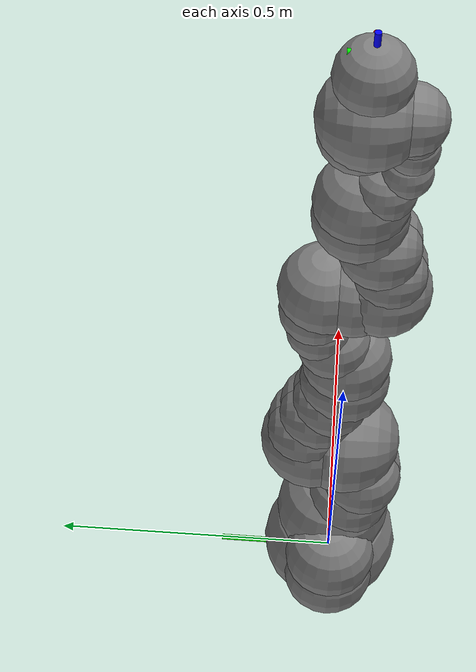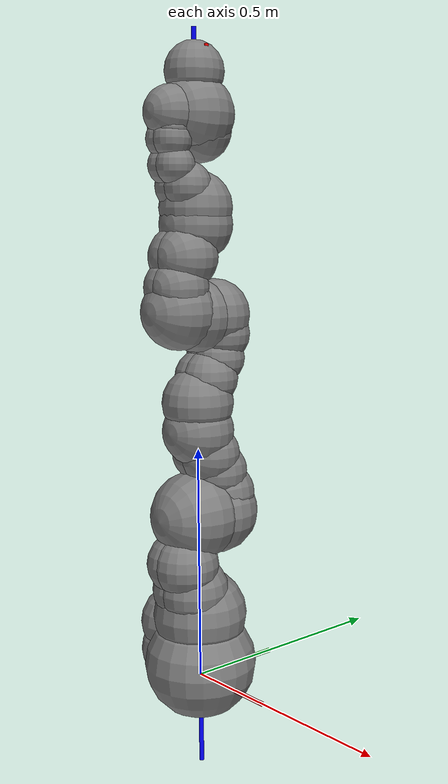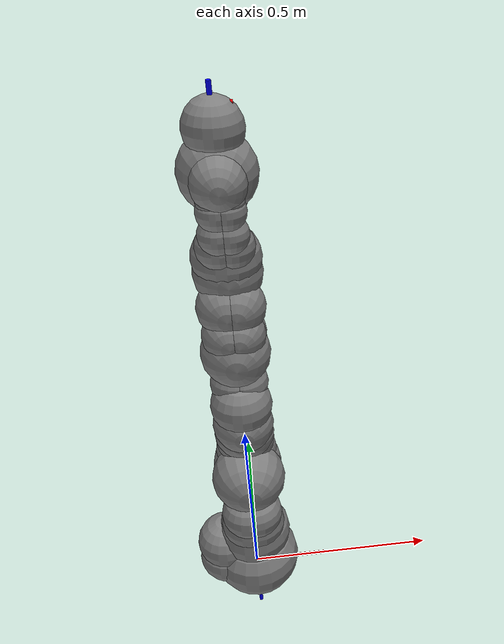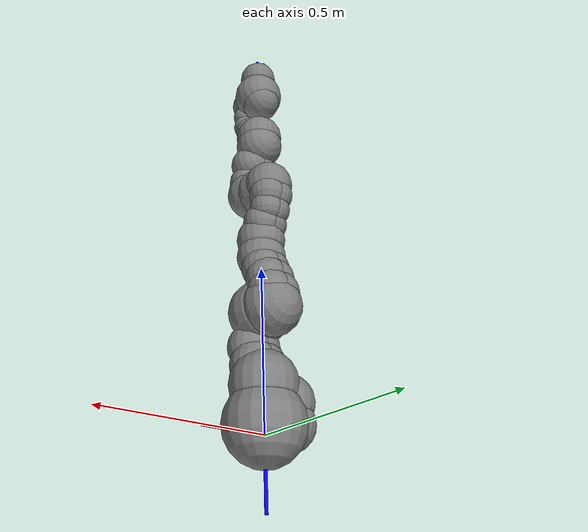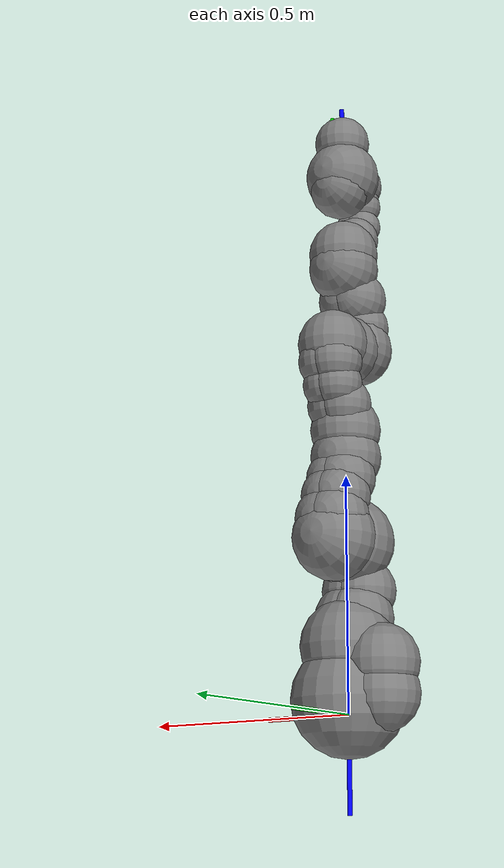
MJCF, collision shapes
<mujoco model="iiwa14">
    <!-- add -->
  <option timestep="0.001"  tolerance="1e-10" solver="Newton" jacobian="dense" cone="pyramidal" gravity="0 0 -9.81">  <!--integrator="RK4"  iteration="50"-->
      <flag contact="enable" energy="enable"/>
  </option>
  <size njmax="500" nconmax="1000" />

  <compiler angle="radian" meshdir="assets" autolimits="true"/>

  <option integrator="implicitfast"/>

  <default>
    <default class="iiwa">
      <material specular="0.5" shininess="0.25"/>
      <joint axis="0 0 1"/>
      <default class="joint1_motor">
        <joint damping="0.5" />
      </default>
      <default class="joint2_motor">
        <joint damping="0.5" />
      </default>
      <default class="joint3_motor">
        <joint damping="0.5" />
      </default>
      <default class="visual">
        <geom type="mesh" contype="0" conaffinity="0" group="2" material="gray"/>
      </default>
      <default class="collision">
        <geom group="3"/>
      </default>
      <site size="0.001" rgba="1 0 0 1" group="4"/>
    </default>
  </default>

  <asset>
    <material class="iiwa" name="gray" rgba="0.4 0.4 0.4 1"/>
    <material class="iiwa" name="light_gray" rgba="0.6 0.6 0.6 1"/>
    <material class="iiwa" name="black" rgba="0 0 0 1"/>
    <material class="iiwa" name="orange" rgba="1 0.423529 0.0392157 1"/>

    <mesh file="link_0.obj"/>
    <mesh file="link_1.obj"/>
    <mesh file="link_2_orange.obj"/>
    <mesh file="link_2_grey.obj"/>
    <mesh file="link_3.obj"/>
    <mesh file="band.obj"/>
    <mesh file="kuka.obj"/>
    <mesh file="link_4_orange.obj"/>
    <mesh file="link_4_grey.obj"/>
    <mesh file="link_5.obj"/>
    <mesh file="link_6_orange.obj"/>
    <mesh file="link_6_grey.obj"/>
    <mesh file="link_7.obj"/>
  </asset>

  <worldbody>
    <body name="base" childclass="iiwa">
      <!-- color -->
      <geom type="cylinder" size="0.005 0.1" rgba="1 0 0 1" pos="0.1 0 0" euler="0 -1.57  0" />
      <geom type="cylinder" size="0.005 0.1" rgba="0 1 0 1" pos="0 0.1 0" euler="-1.57 0 0" />
      <geom type="cylinder" size="0.005 0.2" rgba="0 0 1 1" pos="0 0 0" euler="0 0 0" />
      <inertial mass="5" pos="-0.1 0 0.07" diaginertia="0.05 0.06 0.03"/>
      <geom class="visual" mesh="link_0"/>
      <geom class="collision" size="0.12" pos="0 0 0.03"/>
      <geom class="collision" size="0.08" pos="-0.08 0 0.103"/>
      <geom class="collision" size="0.08" pos="-0.08 0 0.04"/>
      <geom class="collision" size="0.1" pos="0 0 0.14"/>
      <body name="link1" pos="0 0 0.1575">
        <inertial mass="5.76" pos="0 -0.03 0.12" diaginertia="0.0333 0.033 0.0123"/>
        <joint name="joint1" range="-2.96706 2.96706"
          actuatorfrcrange="-176 176" class="joint1_motor"/>
        <geom class="visual" mesh="link_1"/>
        <geom class="collision" size="0.08" pos="0 0 -0.0005"/>
        <geom class="collision" size="0.075" pos="0.01 -0.025 0.0425"/>
        <geom class="collision" size="0.075" pos="-0.01 -0.025 0.0425"/>
        <geom class="collision" size="0.07" pos="0.01 -0.045 0.1025"/>
        <geom class="collision" size="0.07" pos="-0.01 -0.045 0.1025"/>
        <body name="link2" pos="0 0 0.2025" quat="0 0 1 1">
          <inertial mass="6.35" pos="0.0003 0.059 0.042" diaginertia="0.0305 0.0304 0.011" quat="0 0 1 1"/>
          <joint name="joint2" range="-2.0944 2.0944"
          actuatorfrcrange="-176 176" class="joint2_motor"/>
          <geom class="visual" material="orange" mesh="link_2_orange"/>
          <geom class="visual" mesh="link_2_grey"/>
          <geom class="collision" size="0.095" pos="0 0 -0.01"/>
          <geom class="collision" size="0.09" pos="0 0 0.045"/>
          <geom class="collision" size="0.07" pos="-0.01 0.04 0.054"/>
          <geom class="collision" size="0.065" pos="-0.01 0.09 0.04"/>
          <geom class="collision" size="0.065" pos="-0.01 0.13 0.02"/>
          <geom class="collision" size="0.07" pos="0.01 0.04 0.054"/>
          <geom class="collision" size="0.065" pos="0.01 0.09 0.04"/>
          <geom class="collision" size="0.065" pos="0.01 0.13 0.02"/>
          <geom class="collision" size="0.075" pos="0 0.18 0"/>
          <body name="link3" pos="0 0.2045 0" quat="0 0 1 1">
            <inertial mass="3.5" pos="0 0.03 0.13" diaginertia="0.025 0.0238 0.0076"/>
        <joint name="joint3" range="-2.96706 2.96706"
          actuatorfrcrange="-110 110" class="joint1_motor"/>
            <geom class="visual" mesh="link_3"/>
            <geom class="visual" material="light_gray" mesh="band"/>
            <geom class="visual" material="black" mesh="kuka"/>
            <geom class="collision" size="0.075" pos="0 0 0.0355"/>
            <geom class="collision" size="0.06" pos="0.01 0.023 0.0855"/>
            <geom class="collision" size="0.055" pos="0.01 0.048 0.1255"/>
            <geom class="collision" size="0.06" pos="0.01 0.056 0.1755"/>
            <geom class="collision" size="0.06" pos="-0.01 0.023 0.0855"/>
            <geom class="collision" size="0.055" pos="-0.01 0.048 0.1255"/>
            <geom class="collision" size="0.06" pos="-0.01 0.056 0.1755"/>
            <geom class="collision" size="0.075" pos="0 0.045 0.2155"/>
            <geom class="collision" size="0.075" pos="0 0 0.2155"/>
            <body name="link4" pos="0 0 0.2155" quat="1 1 0 0">
              <inertial mass="3.5" pos="0 0.067 0.034" diaginertia="0.017 0.0164 0.006" quat="1 1 0 0"/>
              <joint name="joint4" range="-2.0944 2.0944"
              actuatorfrcrange="-110 110" class="joint2_motor"/>
              <geom class="visual" material="orange" mesh="link_4_orange"/>
              <geom class="visual" mesh="link_4_grey"/>
              <geom class="collision" size="0.078" pos="0 0.01 0.046"/>
              <geom class="collision" size="0.06" pos="0.01 0.06 0.052"/>
              <geom class="collision" size="0.065" pos="0.01 0.12 0.034"/>
              <geom class="collision" size="0.06" pos="-0.01 0.06 0.052"/>
              <geom class="collision" size="0.065" pos="-0.01 0.12 0.034"/>
              <geom class="collision" size="0.075" pos="0 0.184 0"/>
              <body name="link5" pos="0 0.1845 0" quat="0 0 1 1">
                <inertial mass="3.5" pos="0.0001 0.021 0.076" diaginertia="0.01 0.0087 0.00449"/>
                <joint name="joint5" range="-2.96706 2.96706"
                  actuatorfrcrange="-110 110" class="joint1_motor"/>
                <geom class="visual" mesh="link_5"/>
                <geom class="visual" material="light_gray" mesh="band"/>
                <geom class="visual" material="black" mesh="kuka"/>
                <geom class="collision" size="0.075" pos="0 0 0.0335"/>
                <geom class="collision" size="0.05" pos="-0.012 0.031 0.0755"/>
                <geom class="collision" size="0.05" pos="0.012 0.031 0.0755"/>
                <geom class="collision" size="0.04" pos="-0.012 0.06 0.1155"/>
                <geom class="collision" size="0.04" pos="0.012 0.06 0.1155"/>
                <geom class="collision" size="0.04" pos="-0.01 0.065 0.1655"/>
                <geom class="collision" size="0.04" pos="0.01 0.065 0.1655"/>
                <geom class="collision" size="0.035" pos="-0.012 0.065 0.1855"/>
                <geom class="collision" size="0.035" pos="0.012 0.065 0.1855"/>
                <body name="link6" pos="0 0 0.2155" quat="1 1 0 0">
                  <inertial mass="1.8" pos="0 0.0006 0.0004" diaginertia="0.0049 0.0047 0.0036" quat="1 1 0 0"/>
                  <joint name="joint6" range="-2.0944 2.0944"
                  actuatorfrcrange="-40 40" class="joint2_motor"/>
                  <geom class="visual" material="orange" mesh="link_6_orange"/>
                  <geom class="visual" mesh="link_6_grey"/>
                  <geom class="collision" size="0.055" pos="0 0 -0.059"/>
                  <geom class="collision" size="0.065" pos="0 -0.03 0.011"/>
                  <geom class="collision" size="0.08"/>
                  <body name="link7" pos="0 0.081 0" quat="0 0 1 1">
                    <inertial mass="1.2" pos="0 0 0.02" diaginertia="0.001 0.001 0.001"/>
                    <joint name="joint7" range="-3.05433 3.05433"
                       actuatorfrcrange="-40 40" class="joint3_motor"/>
                    <geom class="visual" mesh="link_7"/>
                    <geom class="collision" size="0.06" pos="0 0 0.001"/>
                    <site pos="0 0 0.045" name="attachment_site" />
                    <!-- color frame -->
                    <geom type="cylinder" size="0.005 0.02" rgba="1 0 0 1" pos="0.02 0 0.045" euler="0 -1.57  0" />
                    <geom type="cylinder" size="0.005 0.02" rgba="0 1 0 1" pos="0 0.02 0.045" euler="-1.57 0 0" />
                    <geom type="cylinder" size="0.005 0.02" rgba="0 0 1 1" pos="0 0 0.065" euler="0 0 0" />
                  </body>
                </body>
              </body>
            </body>
          </body>
        </body>
      </body>
    </body>
  </worldbody>

  <contact>
    <exclude body1="base" body2="link1"/>
    <exclude body1="base" body2="link2"/>
    <exclude body1="base" body2="link3"/>
    <exclude body1="link1" body2="link3"/>
    <exclude body1="link3" body2="link5"/>
    <exclude body1="link4" body2="link7"/>
    <exclude body1="link5" body2="link7"/>
  </contact>

  <actuator>
    <motor name="actuator1" joint="joint1" gear="1" ctrllimited="true" ctrlrange="-176 176"/>
    <motor name="actuator2" joint="joint2" gear="1" ctrllimited="true" ctrlrange="-176 176"/>
    <motor name="actuator3" joint="joint3" gear="1" ctrllimited="true" ctrlrange="-110 110"/>
    <motor name="actuator4" joint="joint4" gear="1" ctrllimited="true" ctrlrange="-110 110"/>
    <motor name="actuator5" joint="joint5" gear="1" ctrllimited="true" ctrlrange="-110 110"/>
    <motor name="actuator6" joint="joint6" gear="1" ctrllimited="true" ctrlrange="-40 40"/>
    <motor name="actuator7" joint="joint7" gear="1" ctrllimited="true" ctrlrange="-40 40"/>
  </actuator>

  <keyframe>
    <key name="home" qpos="0 0.785398 0 -1.5708 0 0 0"/>
  </keyframe>

</mujoco>
